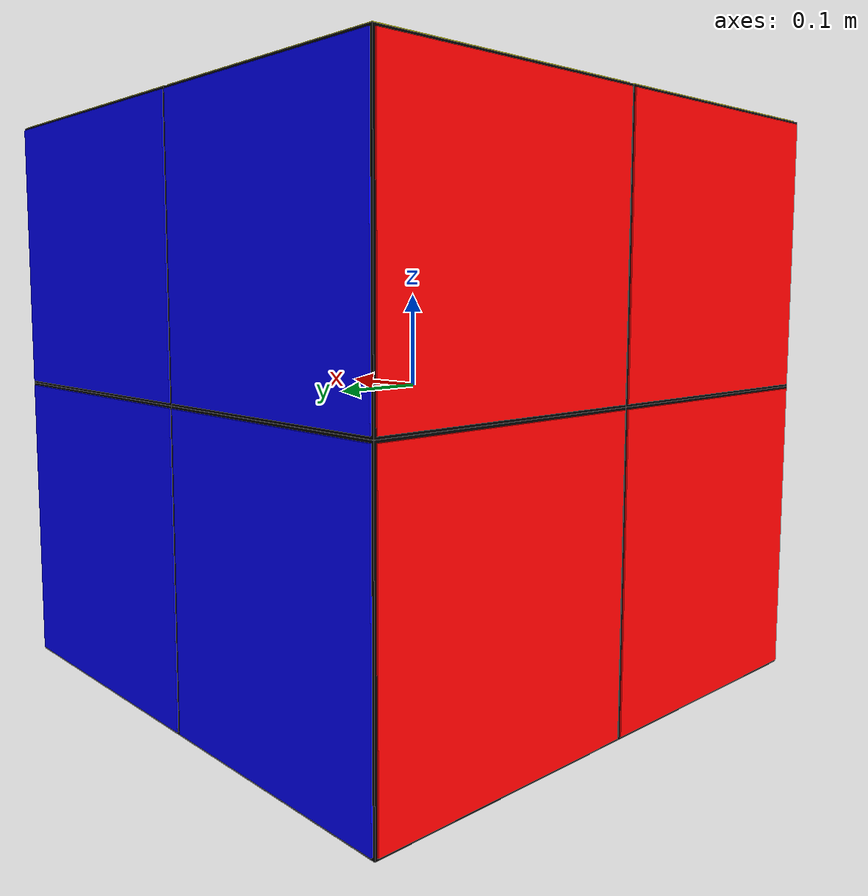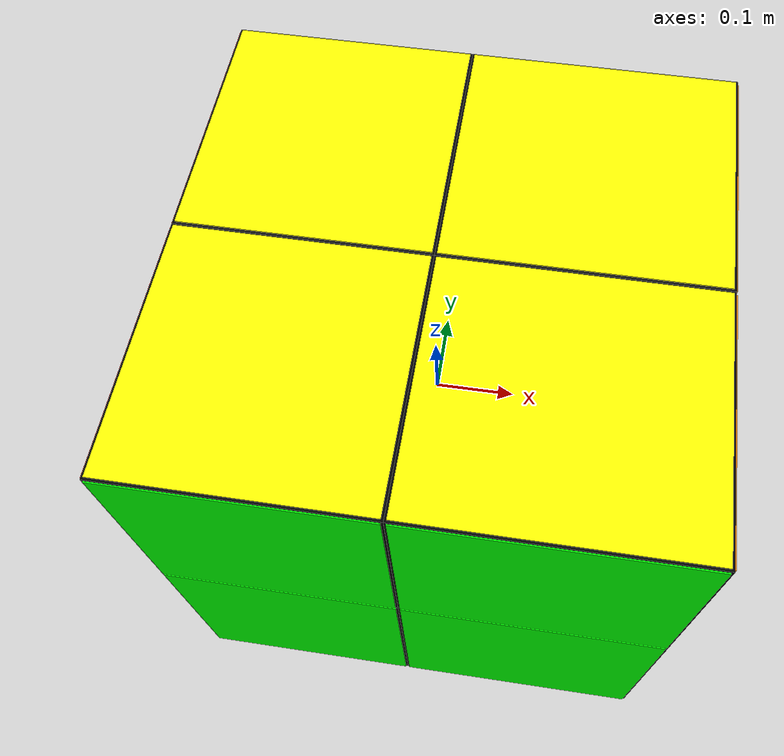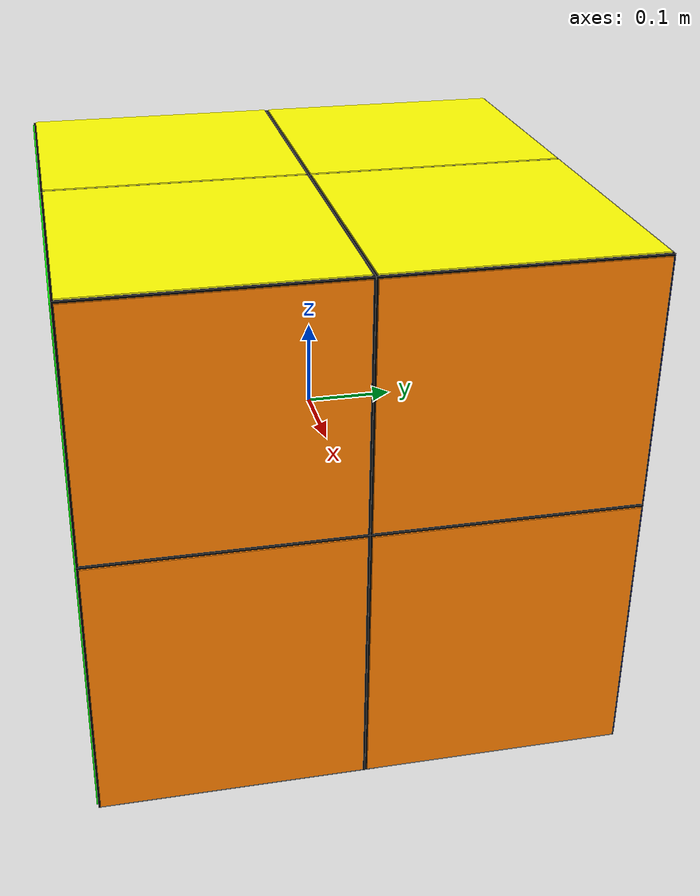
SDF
<?xml version="1.0" ?>
<sdf version="1.7">
	<model name="mirror_cube_2x2">
		<link name="center"/>
		<link name="cubie_0_0_0">
			<pose>-0.14254999999999998 -0.15005 -0.15755 0.0 0.0 0.0</pose>
			<inertial>
				<mass>10.503675</mass>
				<inertia>
					<ixx>0.16562982515625</ixx>
					<ixy>0.0</ixy>
					<ixz>0.0</ixz>
					<iyy>0.15794901281249998</iyy>
					<iyz>0.0</iyz>
					<izz>0.14987431265624998</izz>
				</inertia>
			</inertial>
			<collision name="collision">
				<geometry>
					<box>
						<size>0.285 0.3 0.315</size>
					</box>
				</geometry>
				<surface>
					<friction>
						<ode>
							<mu>0.6</mu>
							<mu2>0.6</mu2>
						</ode>
					</friction>
				</surface>
			</collision>
			<visual name="black">
				<geometry>
					<box>
						<size>0.285 0.3 0.315</size>
					</box>
				</geometry>
				<material>
					<diffuse>0 0 0 1</diffuse>
				</material>
			</visual>
			<visual name="red">
				<pose>-0.1425 0.0 0.0 0.0 0.0 0.0</pose>
				<geometry>
					<box>
						<size>0.0028 0.295 0.31</size>
					</box>
				</geometry>
				<material>
					<diffuse>1 0 0 1</diffuse>
				</material>
			</visual>
			<visual name="green">
				<pose>0.0 -0.15 0.0 0.0 0.0 0.0</pose>
				<geometry>
					<box>
						<size>0.28 0.00295 0.31</size>
					</box>
				</geometry>
				<material>
					<diffuse>0 1 0 1</diffuse>
				</material>
			</visual>
			<visual name="white">
				<pose>0.0 0.0 -0.1575 0.0 0.0 0.0</pose>
				<geometry>
					<box>
						<size>0.28 0.295 0.0031</size>
					</box>
				</geometry>
				<material>
					<diffuse>1 1 1 1</diffuse>
				</material>
			</visual>
		</link>
		<joint name="ball_0_0_0" type="ball">
			<pose>0.14254999999999998 0.15005 0.15755 -0.0 -0.0 -0.0</pose>
			<parent>center</parent>
			<child>cubie_0_0_0</child>
			<axis>
				<dynamics>
					<damping>0.1</damping>
				</dynamics>
				<limit>
					<effort>0</effort>
				</limit>
			</axis>
		</joint>
		<link name="cubie_0_0_1">
			<pose>-0.14254999999999998 -0.15005 0.14254999999999998 0.0 0.0 0.0</pose>
			<inertial>
				<mass>9.503324999999998</mass>
				<inertia>
					<ixx>0.13560056859374997</ixx>
					<ixy>0.0</ixy>
					<ixz>0.0</ixz>
					<iyy>0.12865126218749995</iyy>
					<iyz>0.0</iyz>
					<izz>0.13560056859374997</izz>
				</inertia>
			</inertial>
			<collision name="collision">
				<geometry>
					<box>
						<size>0.285 0.3 0.285</size>
					</box>
				</geometry>
				<surface>
					<friction>
						<ode>
							<mu>0.6</mu>
							<mu2>0.6</mu2>
						</ode>
					</friction>
				</surface>
			</collision>
			<visual name="black">
				<geometry>
					<box>
						<size>0.285 0.3 0.285</size>
					</box>
				</geometry>
				<material>
					<diffuse>0 0 0 1</diffuse>
				</material>
			</visual>
			<visual name="red">
				<pose>-0.1425 0.0 0.0 0.0 0.0 0.0</pose>
				<geometry>
					<box>
						<size>0.0028 0.295 0.28</size>
					</box>
				</geometry>
				<material>
					<diffuse>1 0 0 1</diffuse>
				</material>
			</visual>
			<visual name="green">
				<pose>0.0 -0.15 0.0 0.0 0.0 0.0</pose>
				<geometry>
					<box>
						<size>0.28 0.00295 0.28</size>
					</box>
				</geometry>
				<material>
					<diffuse>0 1 0 1</diffuse>
				</material>
			</visual>
			<visual name="yellow">
				<pose>0.0 0.0 0.1425 0.0 0.0 0.0</pose>
				<geometry>
					<box>
						<size>0.28 0.295 0.0028</size>
					</box>
				</geometry>
				<material>
					<diffuse>1 1 0 1</diffuse>
				</material>
			</visual>
		</link>
		<joint name="ball_0_0_1" type="ball">
			<pose>0.14254999999999998 0.15005 -0.14254999999999998 -0.0 -0.0 -0.0</pose>
			<parent>center</parent>
			<child>cubie_0_0_1</child>
			<axis>
				<dynamics>
					<damping>0.1</damping>
				</dynamics>
				<limit>
					<effort>0</effort>
				</limit>
			</axis>
		</joint>
		<link name="cubie_0_1_0">
			<pose>-0.14254999999999998 0.15005 -0.15755 0.0 0.0 0.0</pose>
			<inertial>
				<mass>10.503675</mass>
				<inertia>
					<ixx>0.16562982515625</ixx>
					<ixy>0.0</ixy>
					<ixz>0.0</ixz>
					<iyy>0.15794901281249998</iyy>
					<iyz>0.0</iyz>
					<izz>0.14987431265624998</izz>
				</inertia>
			</inertial>
			<collision name="collision">
				<geometry>
					<box>
						<size>0.285 0.3 0.315</size>
					</box>
				</geometry>
				<surface>
					<friction>
						<ode>
							<mu>0.6</mu>
							<mu2>0.6</mu2>
						</ode>
					</friction>
				</surface>
			</collision>
			<visual name="black">
				<geometry>
					<box>
						<size>0.285 0.3 0.315</size>
					</box>
				</geometry>
				<material>
					<diffuse>0 0 0 1</diffuse>
				</material>
			</visual>
			<visual name="red">
				<pose>-0.1425 0.0 0.0 0.0 0.0 0.0</pose>
				<geometry>
					<box>
						<size>0.0028 0.295 0.31</size>
					</box>
				</geometry>
				<material>
					<diffuse>1 0 0 1</diffuse>
				</material>
			</visual>
			<visual name="blue">
				<pose>0.0 0.15 0.0 0.0 0.0 0.0</pose>
				<geometry>
					<box>
						<size>0.28 0.00295 0.31</size>
					</box>
				</geometry>
				<material>
					<diffuse>0 0 1 1</diffuse>
				</material>
			</visual>
			<visual name="white">
				<pose>0.0 0.0 -0.1575 0.0 0.0 0.0</pose>
				<geometry>
					<box>
						<size>0.28 0.295 0.0031</size>
					</box>
				</geometry>
				<material>
					<diffuse>1 1 1 1</diffuse>
				</material>
			</visual>
		</link>
		<joint name="ball_0_1_0" type="ball">
			<pose>0.14254999999999998 -0.15005 0.15755 -0.0 -0.0 -0.0</pose>
			<parent>center</parent>
			<child>cubie_0_1_0</child>
			<axis>
				<dynamics>
					<damping>0.1</damping>
				</dynamics>
				<limit>
					<effort>0</effort>
				</limit>
			</axis>
		</joint>
		<link name="cubie_0_1_1">
			<pose>-0.14254999999999998 0.15005 0.14254999999999998 0.0 0.0 0.0</pose>
			<inertial>
				<mass>9.503324999999998</mass>
				<inertia>
					<ixx>0.13560056859374997</ixx>
					<ixy>0.0</ixy>
					<ixz>0.0</ixz>
					<iyy>0.12865126218749995</iyy>
					<iyz>0.0</iyz>
					<izz>0.13560056859374997</izz>
				</inertia>
			</inertial>
			<collision name="collision">
				<geometry>
					<box>
						<size>0.285 0.3 0.285</size>
					</box>
				</geometry>
				<surface>
					<friction>
						<ode>
							<mu>0.6</mu>
							<mu2>0.6</mu2>
						</ode>
					</friction>
				</surface>
			</collision>
			<visual name="black">
				<geometry>
					<box>
						<size>0.285 0.3 0.285</size>
					</box>
				</geometry>
				<material>
					<diffuse>0 0 0 1</diffuse>
				</material>
			</visual>
			<visual name="red">
				<pose>-0.1425 0.0 0.0 0.0 0.0 0.0</pose>
				<geometry>
					<box>
						<size>0.0028 0.295 0.28</size>
					</box>
				</geometry>
				<material>
					<diffuse>1 0 0 1</diffuse>
				</material>
			</visual>
			<visual name="blue">
				<pose>0.0 0.15 0.0 0.0 0.0 0.0</pose>
				<geometry>
					<box>
						<size>0.28 0.00295 0.28</size>
					</box>
				</geometry>
				<material>
					<diffuse>0 0 1 1</diffuse>
				</material>
			</visual>
			<visual name="yellow">
				<pose>0.0 0.0 0.1425 0.0 0.0 0.0</pose>
				<geometry>
					<box>
						<size>0.28 0.295 0.0028</size>
					</box>
				</geometry>
				<material>
					<diffuse>1 1 0 1</diffuse>
				</material>
			</visual>
		</link>
		<joint name="ball_0_1_1" type="ball">
			<pose>0.14254999999999998 -0.15005 -0.14254999999999998 -0.0 -0.0 -0.0</pose>
			<parent>center</parent>
			<child>cubie_0_1_1</child>
			<axis>
				<dynamics>
					<damping>0.1</damping>
				</dynamics>
				<limit>
					<effort>0</effort>
				</limit>
			</axis>
		</joint>
		<link name="cubie_1_0_0">
			<pose>0.15755 -0.15005 -0.15755 0.0 0.0 0.0</pose>
			<inertial>
				<mass>11.609325</mass>
				<inertia>
					<ixx>0.18306454359375002</ixx>
					<ixy>0.0</ixy>
					<ixz>0.0</ixz>
					<iyy>0.19198921218750004</iyy>
					<iyz>0.0</iyz>
					<izz>0.18306454359375002</izz>
				</inertia>
			</inertial>
			<collision name="collision">
				<geometry>
					<box>
						<size>0.315 0.3 0.315</size>
					</box>
				</geometry>
				<surface>
					<friction>
						<ode>
							<mu>0.6</mu>
							<mu2>0.6</mu2>
						</ode>
					</friction>
				</surface>
			</collision>
			<visual name="black">
				<geometry>
					<box>
						<size>0.315 0.3 0.315</size>
					</box>
				</geometry>
				<material>
					<diffuse>0 0 0 1</diffuse>
				</material>
			</visual>
			<visual name="orange">
				<pose>0.1575 0.0 0.0 0.0 0.0 0.0</pose>
				<geometry>
					<box>
						<size>0.0031 0.295 0.31</size>
					</box>
				</geometry>
				<material>
					<diffuse>1.0 0.5 0.0 1.0</diffuse>
				</material>
			</visual>
			<visual name="green">
				<pose>0.0 -0.15 0.0 0.0 0.0 0.0</pose>
				<geometry>
					<box>
						<size>0.31 0.00295 0.31</size>
					</box>
				</geometry>
				<material>
					<diffuse>0 1 0 1</diffuse>
				</material>
			</visual>
			<visual name="white">
				<pose>0.0 0.0 -0.1575 0.0 0.0 0.0</pose>
				<geometry>
					<box>
						<size>0.31 0.295 0.0031</size>
					</box>
				</geometry>
				<material>
					<diffuse>1 1 1 1</diffuse>
				</material>
			</visual>
		</link>
		<joint name="ball_1_0_0" type="ball">
			<pose>-0.15755 0.15005 0.15755 -0.0 -0.0 -0.0</pose>
			<parent>center</parent>
			<child>cubie_1_0_0</child>
			<axis>
				<dynamics>
					<damping>0.1</damping>
				</dynamics>
				<limit>
					<effort>0</effort>
				</limit>
			</axis>
		</joint>
		<link name="cubie_1_0_1">
			<pose>0.15755 -0.15005 0.14254999999999998 0.0 0.0 0.0</pose>
			<inertial>
				<mass>10.503675</mass>
				<inertia>
					<ixx>0.14987431265624998</ixx>
					<ixy>0.0</ixy>
					<ixz>0.0</ixz>
					<iyy>0.15794901281249998</iyy>
					<iyz>0.0</iyz>
					<izz>0.16562982515625</izz>
				</inertia>
			</inertial>
			<collision name="collision">
				<geometry>
					<box>
						<size>0.315 0.3 0.285</size>
					</box>
				</geometry>
				<surface>
					<friction>
						<ode>
							<mu>0.6</mu>
							<mu2>0.6</mu2>
						</ode>
					</friction>
				</surface>
			</collision>
			<visual name="black">
				<geometry>
					<box>
						<size>0.315 0.3 0.285</size>
					</box>
				</geometry>
				<material>
					<diffuse>0 0 0 1</diffuse>
				</material>
			</visual>
			<visual name="orange">
				<pose>0.1575 0.0 0.0 0.0 0.0 0.0</pose>
				<geometry>
					<box>
						<size>0.0031 0.295 0.28</size>
					</box>
				</geometry>
				<material>
					<diffuse>1.0 0.5 0.0 1.0</diffuse>
				</material>
			</visual>
			<visual name="green">
				<pose>0.0 -0.15 0.0 0.0 0.0 0.0</pose>
				<geometry>
					<box>
						<size>0.31 0.00295 0.28</size>
					</box>
				</geometry>
				<material>
					<diffuse>0 1 0 1</diffuse>
				</material>
			</visual>
			<visual name="yellow">
				<pose>0.0 0.0 0.1425 0.0 0.0 0.0</pose>
				<geometry>
					<box>
						<size>0.31 0.295 0.0028</size>
					</box>
				</geometry>
				<material>
					<diffuse>1 1 0 1</diffuse>
				</material>
			</visual>
		</link>
		<joint name="ball_1_0_1" type="ball">
			<pose>-0.15755 0.15005 -0.14254999999999998 -0.0 -0.0 -0.0</pose>
			<parent>center</parent>
			<child>cubie_1_0_1</child>
			<axis>
				<dynamics>
					<damping>0.1</damping>
				</dynamics>
				<limit>
					<effort>0</effort>
				</limit>
			</axis>
		</joint>
		<link name="cubie_1_1_0">
			<pose>0.15755 0.15005 -0.15755 0.0 0.0 0.0</pose>
			<inertial>
				<mass>11.609325</mass>
				<inertia>
					<ixx>0.18306454359375002</ixx>
					<ixy>0.0</ixy>
					<ixz>0.0</ixz>
					<iyy>0.19198921218750004</iyy>
					<iyz>0.0</iyz>
					<izz>0.18306454359375002</izz>
				</inertia>
			</inertial>
			<collision name="collision">
				<geometry>
					<box>
						<size>0.315 0.3 0.315</size>
					</box>
				</geometry>
				<surface>
					<friction>
						<ode>
							<mu>0.6</mu>
							<mu2>0.6</mu2>
						</ode>
					</friction>
				</surface>
			</collision>
			<visual name="black">
				<geometry>
					<box>
						<size>0.315 0.3 0.315</size>
					</box>
				</geometry>
				<material>
					<diffuse>0 0 0 1</diffuse>
				</material>
			</visual>
			<visual name="orange">
				<pose>0.1575 0.0 0.0 0.0 0.0 0.0</pose>
				<geometry>
					<box>
						<size>0.0031 0.295 0.31</size>
					</box>
				</geometry>
				<material>
					<diffuse>1.0 0.5 0.0 1.0</diffuse>
				</material>
			</visual>
			<visual name="blue">
				<pose>0.0 0.15 0.0 0.0 0.0 0.0</pose>
				<geometry>
					<box>
						<size>0.31 0.00295 0.31</size>
					</box>
				</geometry>
				<material>
					<diffuse>0 0 1 1</diffuse>
				</material>
			</visual>
			<visual name="white">
				<pose>0.0 0.0 -0.1575 0.0 0.0 0.0</pose>
				<geometry>
					<box>
						<size>0.31 0.295 0.0031</size>
					</box>
				</geometry>
				<material>
					<diffuse>1 1 1 1</diffuse>
				</material>
			</visual>
		</link>
		<joint name="ball_1_1_0" type="ball">
			<pose>-0.15755 -0.15005 0.15755 -0.0 -0.0 -0.0</pose>
			<parent>center</parent>
			<child>cubie_1_1_0</child>
			<axis>
				<dynamics>
					<damping>0.1</damping>
				</dynamics>
				<limit>
					<effort>0</effort>
				</limit>
			</axis>
		</joint>
		<link name="cubie_1_1_1">
			<pose>0.15755 0.15005 0.14254999999999998 0.0 0.0 0.0</pose>
			<inertial>
				<mass>10.503675</mass>
				<inertia>
					<ixx>0.14987431265624998</ixx>
					<ixy>0.0</ixy>
					<ixz>0.0</ixz>
					<iyy>0.15794901281249998</iyy>
					<iyz>0.0</iyz>
					<izz>0.16562982515625</izz>
				</inertia>
			</inertial>
			<collision name="collision">
				<geometry>
					<box>
						<size>0.315 0.3 0.285</size>
					</box>
				</geometry>
				<surface>
					<friction>
						<ode>
							<mu>0.6</mu>
							<mu2>0.6</mu2>
						</ode>
					</friction>
				</surface>
			</collision>
			<visual name="black">
				<geometry>
					<box>
						<size>0.315 0.3 0.285</size>
					</box>
				</geometry>
				<material>
					<diffuse>0 0 0 1</diffuse>
				</material>
			</visual>
			<visual name="orange">
				<pose>0.1575 0.0 0.0 0.0 0.0 0.0</pose>
				<geometry>
					<box>
						<size>0.0031 0.295 0.28</size>
					</box>
				</geometry>
				<material>
					<diffuse>1.0 0.5 0.0 1.0</diffuse>
				</material>
			</visual>
			<visual name="blue">
				<pose>0.0 0.15 0.0 0.0 0.0 0.0</pose>
				<geometry>
					<box>
						<size>0.31 0.00295 0.28</size>
					</box>
				</geometry>
				<material>
					<diffuse>0 0 1 1</diffuse>
				</material>
			</visual>
			<visual name="yellow">
				<pose>0.0 0.0 0.1425 0.0 0.0 0.0</pose>
				<geometry>
					<box>
						<size>0.31 0.295 0.0028</size>
					</box>
				</geometry>
				<material>
					<diffuse>1 1 0 1</diffuse>
				</material>
			</visual>
		</link>
		<joint name="ball_1_1_1" type="ball">
			<pose>-0.15755 -0.15005 -0.14254999999999998 -0.0 -0.0 -0.0</pose>
			<parent>center</parent>
			<child>cubie_1_1_1</child>
			<axis>
				<dynamics>
					<damping>0.1</damping>
				</dynamics>
				<limit>
					<effort>0</effort>
				</limit>
			</axis>
		</joint>
	</model>
</sdf>
